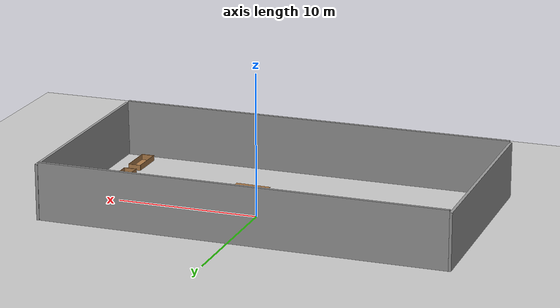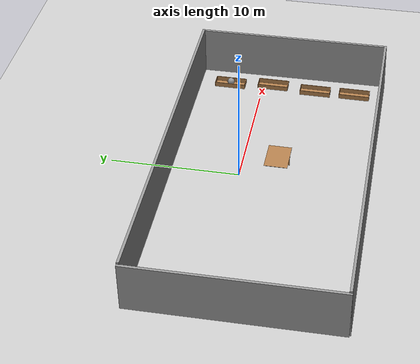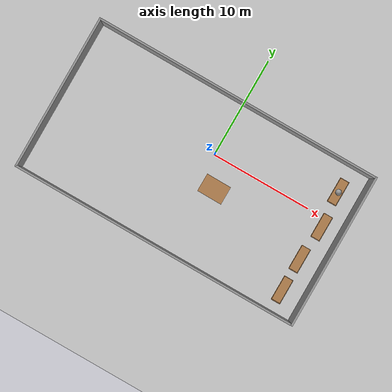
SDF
<sdf version="1.6">
 <world name="default">
  <light name="sun" type="directional">
   <pose>0 0 10 0 -0 0</pose>
   <diffuse>0.8 0.8 0.8 1</diffuse>
   <specular>0.1 0.1 0.1 1</specular>
   <attenuation>
    <range>1000</range>
    <constant>0.9</constant>
    <linear>0.01</linear>
    <quadratic>0.001</quadratic>
   </attenuation>
   <direction>-0.5 0.5 -1</direction>
  </light>
  <model name="ground_plane">
   <static>1</static>
   <link name="link">
    <collision name="collision">
     <geometry><plane><normal>0 0 1</normal><size>100 100</size></plane></geometry>
     <surface><friction><ode><mu>100</mu><mu2>50</mu2></ode></friction></surface>
    </collision>
    <visual name="visual">
     <cast_shadows>0</cast_shadows>
     <geometry><plane><normal>0 0 1</normal><size>100 100</size></plane></geometry>
     <material>
      <script><uri>file://media/materials/scripts/gazebo.material</uri><name>Gazebo/Grey</name></script>
     </material>
    </visual>
   </link>
  </model>
  <gravity>0 0 -9.8</gravity>
  <magnetic_field>6e-06 2.3e-05 -4.2e-05</magnetic_field>
  <atmosphere type="adiabatic"/>
  <physics name="default_physics" default="0" type="ode">
   <max_step_size>0.001</max_step_size>
   <real_time_factor>1</real_time_factor>
   <real_time_update_rate>1000</real_time_update_rate>
  </physics>
  <scene><ambient>0.4 0.4 0.4 1</ambient><background>0.7 0.7 0.7 1</background><shadows>1</shadows></scene>
  <spherical_coordinates>
   <surface_model>EARTH_WGS84</surface_model>
   <latitude_deg>0</latitude_deg>
   <longitude_deg>0</longitude_deg>
   <elevation>0</elevation>
   <heading_deg>0</heading_deg>
  </spherical_coordinates>
  <model name="grey_wall_1">
   <link name="link">
    <pose>0 0 1.4 0 -0 0</pose>
    <inertial>
     <inertia>
      <ixx>1.79769e+308</ixx>
      <ixy>0</ixy>
      <ixz>0</ixz>
      <iyy>1.79769e+308</iyy>
      <iyz>0</iyz>
      <izz>1.79769e+308</izz>
     </inertia>
     <mass>0</mass>
    </inertial>
    <visual name="visual">
     <cast_shadows>0</cast_shadows>
     <geometry><box><size>28.4 0.2 5.2958</size></box></geometry>
     <material>
      <script>
       <uri>model://grey_wall/materials/scripts</uri>
       <uri>model://grey_wall/materials/textures</uri>
       <name>vrc/grey_wall</name>
      </script>
      <ambient>1 1 1 1</ambient>
      <diffuse>1 1 1 1</diffuse>
      <specular>0 0 0 1</specular>
      <emissive>0 0 0 1</emissive>
      <shader type="vertex"><normal_map>__default__</normal_map></shader>
     </material>
    </visual>
    <collision name="collision">
     <geometry><box><size>10.7249 0.2 5.2958</size></box></geometry>
     <surface>
      <friction>
       <ode><mu>1</mu><mu2>1</mu2><fdir1>0 0 0</fdir1><slip1>0</slip1><slip2>0</slip2></ode>
       <torsional>
        <coefficient>1</coefficient>
        <patch_radius>0</patch_radius>
        <surface_radius>0</surface_radius>
        <use_patch_radius>1</use_patch_radius>
        <ode><slip>0</slip></ode>
       </torsional>
      </friction>
      <bounce><restitution_coefficient>0</restitution_coefficient><threshold>1e+06</threshold></bounce>
      <contact>
       <collide_without_contact>0</collide_without_contact>
       <collide_without_contact_bitmask>1</collide_without_contact_bitmask>
       <collide_bitmask>1</collide_bitmask>
       <ode>
        <soft_cfm>0</soft_cfm>
        <soft_erp>0.2</soft_erp>
        <kp>1e+13</kp>
        <kd>1</kd>
        <max_vel>0.01</max_vel>
        <min_depth>0</min_depth>
       </ode>
       <bullet>
        <split_impulse>1</split_impulse>
        <split_impulse_penetration_threshold>-0.01</split_impulse_penetration_threshold>
        <soft_cfm>0</soft_cfm>
        <soft_erp>0.2</soft_erp>
        <kp>1e+13</kp>
        <kd>1</kd>
       </bullet>
      </contact>
     </surface>
    </collision>
   </link>
   <static>1</static>
   <pose>-0.679853 -9.94565 -2e-06 -0.029473 0 0</pose>
  </model>
  <model name="grey_wall_1_clone">
   <link name="link">
    <pose>0 0 1.4 0 -0 0</pose>
    <inertial>
     <inertia>
      <ixx>1.79769e+308</ixx>
      <ixy>0</ixy>
      <ixz>0</ixz>
      <iyy>1.79769e+308</iyy>
      <iyz>0</iyz>
      <izz>1.79769e+308</izz>
     </inertia>
     <mass>0</mass>
    </inertial>
    <visual name="visual">
     <cast_shadows>0</cast_shadows>
     <geometry><box><size>28.4 0.2 5.2958</size></box></geometry>
     <material>
      <script>
       <uri>model://grey_wall/materials/scripts</uri>
       <uri>model://grey_wall/materials/textures</uri>
       <name>vrc/grey_wall</name>
      </script>
      <ambient>1 1 1 1</ambient>
      <diffuse>1 1 1 1</diffuse>
      <specular>0 0 0 1</specular>
      <emissive>0 0 0 1</emissive>
      <shader type="vertex"><normal_map>__default__</normal_map></shader>
     </material>
    </visual>
    <collision name="collision">
     <geometry><box><size>10.7249 0.2 5.2958</size></box></geometry>
     <surface>
      <friction>
       <ode><mu>1</mu><mu2>1</mu2><fdir1>0 0 0</fdir1><slip1>0</slip1><slip2>0</slip2></ode>
       <torsional>
        <coefficient>1</coefficient>
        <patch_radius>0</patch_radius>
        <surface_radius>0</surface_radius>
        <use_patch_radius>1</use_patch_radius>
        <ode><slip>0</slip></ode>
       </torsional>
      </friction>
      <bounce><restitution_coefficient>0</restitution_coefficient><threshold>1e+06</threshold></bounce>
      <contact>
       <collide_without_contact>0</collide_without_contact>
       <collide_without_contact_bitmask>1</collide_without_contact_bitmask>
       <collide_bitmask>1</collide_bitmask>
       <ode>
        <soft_cfm>0</soft_cfm>
        <soft_erp>0.2</soft_erp>
        <kp>1e+13</kp>
        <kd>1</kd>
        <max_vel>0.01</max_vel>
        <min_depth>0</min_depth>
       </ode>
       <bullet>
        <split_impulse>1</split_impulse>
        <split_impulse_penetration_threshold>-0.01</split_impulse_penetration_threshold>
        <soft_cfm>0</soft_cfm>
        <soft_erp>0.2</soft_erp>
        <kp>1e+13</kp>
        <kd>1</kd>
       </bullet>
      </contact>
     </surface>
    </collision>
   </link>
   <static>1</static>
   <pose>-0.696129 5.35932 0 0 -0 0</pose>
  </model>
  <model name="grey_wall_6">
   <link name="link">
    <pose>0 0 1.4 0 -0 0</pose>
    <inertial>
     <mass>1</mass>
     <inertia><ixx>1</ixx><ixy>0</ixy><ixz>0</ixz><iyy>1</iyy><iyz>0</iyz><izz>1</izz></inertia>
    </inertial>
    <visual name="visual">
     <cast_shadows>0</cast_shadows>
     <geometry><box><size>15.4 0.2 5</size></box></geometry>
     <material>
      <script>
       <uri>model://grey_wall/materials/scripts</uri>
       <uri>model://grey_wall/materials/textures</uri>
       <name>vrc/grey_wall</name>
      </script>
      <ambient>1 1 1 1</ambient>
      <diffuse>1 1 1 1</diffuse>
      <specular>0 0 0 1</specular>
      <emissive>0 0 0 1</emissive>
      <shader type="vertex"><normal_map>__default__</normal_map></shader>
     </material>
    </visual>
    <collision name="collision">
     <geometry><box><size>15.4 0.2 5</size></box></geometry>
     <surface>
      <friction>
       <ode><mu>1</mu><mu2>1</mu2><fdir1>0 0 0</fdir1><slip1>0</slip1><slip2>0</slip2></ode>
       <torsional>
        <coefficient>1</coefficient>
        <patch_radius>0</patch_radius>
        <surface_radius>0</surface_radius>
        <use_patch_radius>1</use_patch_radius>
        <ode><slip>0</slip></ode>
       </torsional>
      </friction>
      <bounce><restitution_coefficient>0</restitution_coefficient><threshold>1e+06</threshold></bounce>
      <contact>
       <collide_without_contact>0</collide_without_contact>
       <collide_without_contact_bitmask>1</collide_without_contact_bitmask>
       <collide_bitmask>1</collide_bitmask>
       <ode>
        <soft_cfm>0</soft_cfm>
        <soft_erp>0.2</soft_erp>
        <kp>1e+13</kp>
        <kd>1</kd>
        <max_vel>0.01</max_vel>
        <min_depth>0</min_depth>
       </ode>
       <bullet>
        <split_impulse>1</split_impulse>
        <split_impulse_penetration_threshold>-0.01</split_impulse_penetration_threshold>
        <soft_cfm>0</soft_cfm>
        <soft_erp>0.2</soft_erp>
        <kp>1e+13</kp>
        <kd>1</kd>
       </bullet>
      </contact>
     </surface>
    </collision>
   </link>
   <static>1</static>
   <pose>13.638 -2.2219 0 0 0 -1.56669</pose>
  </model>
  <model name="grey_wall_6_clone">
   <link name="link">
    <pose>0 0 1.4 0 -0 0</pose>
    <inertial>
     <mass>1</mass>
     <inertia><ixx>1</ixx><ixy>0</ixy><ixz>0</ixz><iyy>1</iyy><iyz>0</iyz><izz>1</izz></inertia>
    </inertial>
    <visual name="visual">
     <cast_shadows>0</cast_shadows>
     <geometry><box><size>15.4 0.2 5</size></box></geometry>
     <material>
      <script>
       <uri>model://grey_wall/materials/scripts</uri>
       <uri>model://grey_wall/materials/textures</uri>
       <name>vrc/grey_wall</name>
      </script>
      <ambient>1 1 1 1</ambient>
      <diffuse>1 1 1 1</diffuse>
      <specular>0 0 0 1</specular>
      <emissive>0 0 0 1</emissive>
      <shader type="vertex"><normal_map>__default__</normal_map></shader>
     </material>
    </visual>
    <collision name="collision">
     <geometry><box><size>15.4 0.2 5</size></box></geometry>
     <surface>
      <friction>
       <ode><mu>1</mu><mu2>1</mu2><fdir1>0 0 0</fdir1><slip1>0</slip1><slip2>0</slip2></ode>
       <torsional>
        <coefficient>1</coefficient>
        <patch_radius>0</patch_radius>
        <surface_radius>0</surface_radius>
        <use_patch_radius>1</use_patch_radius>
        <ode><slip>0</slip></ode>
       </torsional>
      </friction>
      <bounce><restitution_coefficient>0</restitution_coefficient><threshold>1e+06</threshold></bounce>
      <contact>
       <collide_without_contact>0</collide_without_contact>
       <collide_without_contact_bitmask>1</collide_without_contact_bitmask>
       <collide_bitmask>1</collide_bitmask>
       <ode>
        <soft_cfm>0</soft_cfm>
        <soft_erp>0.2</soft_erp>
        <kp>1e+13</kp>
        <kd>1</kd>
        <max_vel>0.01</max_vel>
        <min_depth>0</min_depth>
       </ode>
       <bullet>
        <split_impulse>1</split_impulse>
        <split_impulse_penetration_threshold>-0.01</split_impulse_penetration_threshold>
        <soft_cfm>0</soft_cfm>
        <soft_erp>0.2</soft_erp>
        <kp>1e+13</kp>
        <kd>1</kd>
       </bullet>
      </contact>
     </surface>
    </collision>
   </link>
   <static>1</static>
   <pose>-14.9515 -2.24327 0 0 0 -1.56669</pose>
  </model>
  <model name="T_shaped_wood">
   <link name="link">
    <pose>0.009818 0.006108 0.4677 1.37196 -1.56328 -2.95098</pose>
    <inertial>
     <mass>1</mass>
     <inertia><ixx>1</ixx><ixy>0</ixy><ixz>0</ixz><iyy>1</iyy><iyz>0</iyz><izz>1</izz></inertia>
    </inertial>
    <visual name="visual1">
     <pose>0 0.005 0.6 0 -0 0</pose>
     <geometry><box><size>0.9 0.01 1.8</size></box></geometry>
     <material>
      <script><uri>file://media/materials/scripts/gazebo.material</uri><name>Gazebo/Wood</name></script>
      <ambient>1 1 1 1</ambient>
      <diffuse>1 1 1 1</diffuse>
      <specular>0.2 0.2 0.2 1</specular>
      <emissive>0 0 0 1</emissive>
      <shader type="vertex"><normal_map>__default__</normal_map></shader>
     </material>
    </visual>
    <visual name="visual2">
     <pose>0.45 -0.195 0.6 0 -0 0</pose>
     <geometry><box><size>0.02 2.5 1.8</size></box></geometry>
     <material>
      <script><uri>file://media/materials/scripts/gazebo.material</uri><name>Gazebo/Wood</name></script>
      <ambient>1 1 1 1</ambient>
      <diffuse>1 1 1 1</diffuse>
      <specular>0.2 0.2 0.2 1</specular>
      <emissive>0 0 0 1</emissive>
      <shader type="vertex"><normal_map>__default__</normal_map></shader>
     </material>
    </visual>
    <collision name="back">
     <pose>0 0.005 0.6 0 -0 0</pose>
     <geometry><box><size>0.9 0.01 1.2</size></box></geometry>
     <surface>
      <friction>
       <ode><mu>1</mu><mu2>1</mu2><fdir1>0 0 0</fdir1><slip1>0</slip1><slip2>0</slip2></ode>
       <torsional>
        <coefficient>1</coefficient>
        <patch_radius>0</patch_radius>
        <surface_radius>0</surface_radius>
        <use_patch_radius>1</use_patch_radius>
        <ode><slip>0</slip></ode>
       </torsional>
      </friction>
      <bounce><restitution_coefficient>0</restitution_coefficient><threshold>1e+06</threshold></bounce>
      <contact>
       <collide_without_contact>0</collide_without_contact>
       <collide_without_contact_bitmask>1</collide_without_contact_bitmask>
       <collide_bitmask>1</collide_bitmask>
       <ode>
        <soft_cfm>0</soft_cfm>
        <soft_erp>0.2</soft_erp>
        <kp>1e+13</kp>
        <kd>1</kd>
        <max_vel>0.01</max_vel>
        <min_depth>0</min_depth>
       </ode>
       <bullet>
        <split_impulse>1</split_impulse>
        <split_impulse_penetration_threshold>-0.01</split_impulse_penetration_threshold>
        <soft_cfm>0</soft_cfm>
        <soft_erp>0.2</soft_erp>
        <kp>1e+13</kp>
        <kd>1</kd>
       </bullet>
      </contact>
     </surface>
    </collision>
    <collision name="left_side">
     <pose>0.45 -0.195 0.6 0 -0 0</pose>
     <geometry><box><size>0.02 2.5 1.2</size></box></geometry>
     <surface>
      <friction>
       <ode><mu>1</mu><mu2>1</mu2><fdir1>0 0 0</fdir1><slip1>0</slip1><slip2>0</slip2></ode>
       <torsional>
        <coefficient>1</coefficient>
        <patch_radius>0</patch_radius>
        <surface_radius>0</surface_radius>
        <use_patch_radius>1</use_patch_radius>
        <ode><slip>0</slip></ode>
       </torsional>
      </friction>
      <bounce><restitution_coefficient>0</restitution_coefficient><threshold>1e+06</threshold></bounce>
      <contact>
       <collide_without_contact>0</collide_without_contact>
       <collide_without_contact_bitmask>1</collide_without_contact_bitmask>
       <collide_bitmask>1</collide_bitmask>
       <ode>
        <soft_cfm>0</soft_cfm>
        <soft_erp>0.2</soft_erp>
        <kp>1e+13</kp>
        <kd>1</kd>
        <max_vel>0.01</max_vel>
        <min_depth>0</min_depth>
       </ode>
       <bullet>
        <split_impulse>1</split_impulse>
        <split_impulse_penetration_threshold>-0.01</split_impulse_penetration_threshold>
        <soft_cfm>0</soft_cfm>
        <soft_erp>0.2</soft_erp>
        <kp>1e+13</kp>
        <kd>1</kd>
       </bullet>
      </contact>
     </surface>
    </collision>
   </link>
   <static>1</static>
   <pose>1.749 -3.36341 0 0 -0 0</pose>
  </model>
  <model name="open_box">
   <link name="link">
    <pose>0 0 0.638574 0 -0 0</pose>
    <inertial>
     <mass>1</mass>
     <inertia><ixx>1</ixx><ixy>0</ixy><ixz>0</ixz><iyy>1</iyy><iyz>0</iyz><izz>1</izz></inertia>
    </inertial>
    <visual name="visual1">
     <pose>0 0.005 0.6 0 -0 0</pose>
     <geometry><box><size>0.9 0.01 2.5</size></box></geometry>
     <material>
      <script><uri>file://media/materials/scripts/gazebo.material</uri><name>Gazebo/Wood</name></script>
      <ambient>1 1 1 1</ambient>
      <diffuse>1 1 1 1</diffuse>
      <specular>0.2 0.2 0.2 1</specular>
      <emissive>0 0 0 1</emissive>
      <shader type="vertex"><normal_map>__default__</normal_map></shader>
     </material>
    </visual>
    <visual name="visual2">
     <pose>0.45 -0.195 0.6 0 -0 0</pose>
     <geometry><box><size>0.02 0.4 2.5</size></box></geometry>
     <material>
      <script><uri>file://media/materials/scripts/gazebo.material</uri><name>Gazebo/Wood</name></script>
      <ambient>1 1 1 1</ambient>
      <diffuse>1 1 1 1</diffuse>
      <specular>0.2 0.2 0.2 1</specular>
      <emissive>0 0 0 1</emissive>
      <shader type="vertex"><normal_map>__default__</normal_map></shader>
     </material>
    </visual>
    <visual name="visual3">
     <pose>-0.45 -0.195 0.6 0 -0 0</pose>
     <geometry><box><size>0.02 0.4 2.5</size></box></geometry>
     <material>
      <script><uri>file://media/materials/scripts/gazebo.material</uri><name>Gazebo/Wood</name></script>
      <ambient>1 1 1 1</ambient>
      <diffuse>1 1 1 1</diffuse>
      <specular>0.2 0.2 0.2 1</specular>
      <emissive>0 0 0 1</emissive>
      <shader type="vertex"><normal_map>__default__</normal_map></shader>
     </material>
    </visual>
    <visual name="visual4">
     <pose>0 -0.195 -0.62 0 -0 0</pose>
     <geometry><box><size>0.88 0.4 0.06</size></box></geometry>
     <material>
      <script><uri>file://media/materials/scripts/gazebo.material</uri><name>Gazebo/Wood</name></script>
      <ambient>1 1 1 1</ambient>
      <diffuse>1 1 1 1</diffuse>
      <specular>0.2 0.2 0.2 1</specular>
      <emissive>0 0 0 1</emissive>
      <shader type="vertex"><normal_map>__default__</normal_map></shader>
     </material>
    </visual>
    <visual name="visual5">
     <pose>0 -0.195 1.85 0 -0 0</pose>
     <geometry><box><size>0.88 0.4 0.02</size></box></geometry>
     <material>
      <script><uri>file://media/materials/scripts/gazebo.material</uri><name>Gazebo/Wood</name></script>
      <ambient>1 1 1 1</ambient>
      <diffuse>1 1 1 1</diffuse>
      <specular>0.2 0.2 0.2 1</specular>
      <emissive>0 0 0 1</emissive>
      <shader type="vertex"><normal_map>__default__</normal_map></shader>
     </material>
    </visual>
    <collision name="back">
     <pose>0 0.005 0.6 0 -0 0</pose>
     <geometry><box><size>0.9 0.01 2.5</size></box></geometry>
     <surface>
      <friction>
       <ode><mu>1</mu><mu2>1</mu2><fdir1>0 0 0</fdir1><slip1>0</slip1><slip2>0</slip2></ode>
       <torsional>
        <coefficient>1</coefficient>
        <patch_radius>0</patch_radius>
        <surface_radius>0</surface_radius>
        <use_patch_radius>1</use_patch_radius>
        <ode><slip>0</slip></ode>
       </torsional>
      </friction>
      <bounce><restitution_coefficient>0</restitution_coefficient><threshold>1e+06</threshold></bounce>
      <contact>
       <collide_without_contact>0</collide_without_contact>
       <collide_without_contact_bitmask>1</collide_without_contact_bitmask>
       <collide_bitmask>1</collide_bitmask>
       <ode>
        <soft_cfm>0</soft_cfm>
        <soft_erp>0.2</soft_erp>
        <kp>1e+13</kp>
        <kd>1</kd>
        <max_vel>0.01</max_vel>
        <min_depth>0</min_depth>
       </ode>
       <bullet>
        <split_impulse>1</split_impulse>
        <split_impulse_penetration_threshold>-0.01</split_impulse_penetration_threshold>
        <soft_cfm>0</soft_cfm>
        <soft_erp>0.2</soft_erp>
        <kp>1e+13</kp>
        <kd>1</kd>
       </bullet>
      </contact>
     </surface>
    </collision>
    <collision name="left_side">
     <pose>0.45 -0.195 0.6 0 -0 0</pose>
     <geometry><box><size>0.02 0.4 1.2</size></box></geometry>
     <surface>
      <friction>
       <ode><mu>1</mu><mu2>1</mu2><fdir1>0 0 0</fdir1><slip1>0</slip1><slip2>0</slip2></ode>
       <torsional>
        <coefficient>1</coefficient>
        <patch_radius>0</patch_radius>
        <surface_radius>0</surface_radius>
        <use_patch_radius>1</use_patch_radius>
        <ode><slip>0</slip></ode>
       </torsional>
      </friction>
      <bounce><restitution_coefficient>0</restitution_coefficient><threshold>1e+06</threshold></bounce>
      <contact>
       <collide_without_contact>0</collide_without_contact>
       <collide_without_contact_bitmask>1</collide_without_contact_bitmask>
       <collide_bitmask>1</collide_bitmask>
       <ode>
        <soft_cfm>0</soft_cfm>
        <soft_erp>0.2</soft_erp>
        <kp>1e+13</kp>
        <kd>1</kd>
        <max_vel>0.01</max_vel>
        <min_depth>0</min_depth>
       </ode>
       <bullet>
        <split_impulse>1</split_impulse>
        <split_impulse_penetration_threshold>-0.01</split_impulse_penetration_threshold>
        <soft_cfm>0</soft_cfm>
        <soft_erp>0.2</soft_erp>
        <kp>1e+13</kp>
        <kd>1</kd>
       </bullet>
      </contact>
     </surface>
    </collision>
    <collision name="right_side">
     <pose>-0.45 -0.195 0.6 0 -0 0</pose>
     <geometry><box><size>0.02 0.4 1.2</size></box></geometry>
     <surface>
      <friction>
       <ode><mu>1</mu><mu2>1</mu2><fdir1>0 0 0</fdir1><slip1>0</slip1><slip2>0</slip2></ode>
       <torsional>
        <coefficient>1</coefficient>
        <patch_radius>0</patch_radius>
        <surface_radius>0</surface_radius>
        <use_patch_radius>1</use_patch_radius>
        <ode><slip>0</slip></ode>
       </torsional>
      </friction>
      <bounce><restitution_coefficient>0</restitution_coefficient><threshold>1e+06</threshold></bounce>
      <contact>
       <collide_without_contact>0</collide_without_contact>
       <collide_without_contact_bitmask>1</collide_without_contact_bitmask>
       <collide_bitmask>1</collide_bitmask>
       <ode>
        <soft_cfm>0</soft_cfm>
        <soft_erp>0.2</soft_erp>
        <kp>1e+13</kp>
        <kd>1</kd>
        <max_vel>0.01</max_vel>
        <min_depth>0</min_depth>
       </ode>
       <bullet>
        <split_impulse>1</split_impulse>
        <split_impulse_penetration_threshold>-0.01</split_impulse_penetration_threshold>
        <soft_cfm>0</soft_cfm>
        <soft_erp>0.2</soft_erp>
        <kp>1e+13</kp>
        <kd>1</kd>
       </bullet>
      </contact>
     </surface>
    </collision>
    <collision name="bottom">
     <pose>0 -0.195 0.03 0 -0 0</pose>
     <geometry><box><size>0.88 0.4 0.06</size></box></geometry>
     <surface>
      <friction>
       <ode><mu>1</mu><mu2>1</mu2><fdir1>0 0 0</fdir1><slip1>0</slip1><slip2>0</slip2></ode>
       <torsional>
        <coefficient>1</coefficient>
        <patch_radius>0</patch_radius>
        <surface_radius>0</surface_radius>
        <use_patch_radius>1</use_patch_radius>
        <ode><slip>0</slip></ode>
       </torsional>
      </friction>
      <bounce><restitution_coefficient>0</restitution_coefficient><threshold>1e+06</threshold></bounce>
      <contact>
       <collide_without_contact>0</collide_without_contact>
       <collide_without_contact_bitmask>1</collide_without_contact_bitmask>
       <collide_bitmask>1</collide_bitmask>
       <ode>
        <soft_cfm>0</soft_cfm>
        <soft_erp>0.2</soft_erp>
        <kp>1e+13</kp>
        <kd>1</kd>
        <max_vel>0.01</max_vel>
        <min_depth>0</min_depth>
       </ode>
       <bullet>
        <split_impulse>1</split_impulse>
        <split_impulse_penetration_threshold>-0.01</split_impulse_penetration_threshold>
        <soft_cfm>0</soft_cfm>
        <soft_erp>0.2</soft_erp>
        <kp>1e+13</kp>
        <kd>1</kd>
       </bullet>
      </contact>
     </surface>
    </collision>
    <collision name="top">
     <pose>0 -0.195 1.19 0 -0 0</pose>
     <geometry><box><size>0.88 0.4 0.02</size></box></geometry>
     <surface>
      <friction>
       <ode><mu>1</mu><mu2>1</mu2><fdir1>0 0 0</fdir1><slip1>0</slip1><slip2>0</slip2></ode>
       <torsional>
        <coefficient>1</coefficient>
        <patch_radius>0</patch_radius>
        <surface_radius>0</surface_radius>
        <use_patch_radius>1</use_patch_radius>
        <ode><slip>0</slip></ode>
       </torsional>
      </friction>
      <bounce><restitution_coefficient>0</restitution_coefficient><threshold>1e+06</threshold></bounce>
      <contact>
       <collide_without_contact>0</collide_without_contact>
       <collide_without_contact_bitmask>1</collide_without_contact_bitmask>
       <collide_bitmask>1</collide_bitmask>
       <ode>
        <soft_cfm>0</soft_cfm>
        <soft_erp>0.2</soft_erp>
        <kp>1e+13</kp>
        <kd>1</kd>
        <max_vel>0.01</max_vel>
        <min_depth>0</min_depth>
       </ode>
       <bullet>
        <split_impulse>1</split_impulse>
        <split_impulse_penetration_threshold>-0.01</split_impulse_penetration_threshold>
        <soft_cfm>0</soft_cfm>
        <soft_erp>0.2</soft_erp>
        <kp>1e+13</kp>
        <kd>1</kd>
       </bullet>
      </contact>
     </surface>
    </collision>
   </link>
   <static>1</static>
   <pose>11.6351 1.51242 0 -1.5641 0 0</pose>
  </model>
  <model name="open_box_clone">
   <link name="link">
    <pose>0 0 0.638574 0 -0 0</pose>
    <inertial>
     <mass>1</mass>
     <inertia><ixx>1</ixx><ixy>0</ixy><ixz>0</ixz><iyy>1</iyy><iyz>0</iyz><izz>1</izz></inertia>
    </inertial>
    <visual name="visual1">
     <pose>0 0.005 0.6 0 -0 0</pose>
     <geometry><box><size>0.9 0.01 2.5</size></box></geometry>
     <material>
      <script><uri>file://media/materials/scripts/gazebo.material</uri><name>Gazebo/Wood</name></script>
      <ambient>1 1 1 1</ambient>
      <diffuse>1 1 1 1</diffuse>
      <specular>0.2 0.2 0.2 1</specular>
      <emissive>0 0 0 1</emissive>
      <shader type="vertex"><normal_map>__default__</normal_map></shader>
     </material>
    </visual>
    <visual name="visual2">
     <pose>0.45 -0.195 0.6 0 -0 0</pose>
     <geometry><box><size>0.02 0.4 2.5</size></box></geometry>
     <material>
      <script><uri>file://media/materials/scripts/gazebo.material</uri><name>Gazebo/Wood</name></script>
      <ambient>1 1 1 1</ambient>
      <diffuse>1 1 1 1</diffuse>
      <specular>0.2 0.2 0.2 1</specular>
      <emissive>0 0 0 1</emissive>
      <shader type="vertex"><normal_map>__default__</normal_map></shader>
     </material>
    </visual>
    <visual name="visual3">
     <pose>-0.45 -0.195 0.6 0 -0 0</pose>
     <geometry><box><size>0.02 0.4 2.5</size></box></geometry>
     <material>
      <script><uri>file://media/materials/scripts/gazebo.material</uri><name>Gazebo/Wood</name></script>
      <ambient>1 1 1 1</ambient>
      <diffuse>1 1 1 1</diffuse>
      <specular>0.2 0.2 0.2 1</specular>
      <emissive>0 0 0 1</emissive>
      <shader type="vertex"><normal_map>__default__</normal_map></shader>
     </material>
    </visual>
    <visual name="visual4">
     <pose>0 -0.195 -0.62 0 -0 0</pose>
     <geometry><box><size>0.88 0.4 0.06</size></box></geometry>
     <material>
      <script><uri>file://media/materials/scripts/gazebo.material</uri><name>Gazebo/Wood</name></script>
      <ambient>1 1 1 1</ambient>
      <diffuse>1 1 1 1</diffuse>
      <specular>0.2 0.2 0.2 1</specular>
      <emissive>0 0 0 1</emissive>
      <shader type="vertex"><normal_map>__default__</normal_map></shader>
     </material>
    </visual>
    <visual name="visual5">
     <pose>0 -0.195 1.85 0 -0 0</pose>
     <geometry><box><size>0.88 0.4 0.02</size></box></geometry>
     <material>
      <script><uri>file://media/materials/scripts/gazebo.material</uri><name>Gazebo/Wood</name></script>
      <ambient>1 1 1 1</ambient>
      <diffuse>1 1 1 1</diffuse>
      <specular>0.2 0.2 0.2 1</specular>
      <emissive>0 0 0 1</emissive>
      <shader type="vertex"><normal_map>__default__</normal_map></shader>
     </material>
    </visual>
    <collision name="back">
     <pose>0 0.005 0.6 0 -0 0</pose>
     <geometry><box><size>0.9 0.01 2.5</size></box></geometry>
     <surface>
      <friction>
       <ode><mu>1</mu><mu2>1</mu2><fdir1>0 0 0</fdir1><slip1>0</slip1><slip2>0</slip2></ode>
       <torsional>
        <coefficient>1</coefficient>
        <patch_radius>0</patch_radius>
        <surface_radius>0</surface_radius>
        <use_patch_radius>1</use_patch_radius>
        <ode><slip>0</slip></ode>
       </torsional>
      </friction>
      <bounce><restitution_coefficient>0</restitution_coefficient><threshold>1e+06</threshold></bounce>
      <contact>
       <collide_without_contact>0</collide_without_contact>
       <collide_without_contact_bitmask>1</collide_without_contact_bitmask>
       <collide_bitmask>1</collide_bitmask>
       <ode>
        <soft_cfm>0</soft_cfm>
        <soft_erp>0.2</soft_erp>
        <kp>1e+13</kp>
        <kd>1</kd>
        <max_vel>0.01</max_vel>
        <min_depth>0</min_depth>
       </ode>
       <bullet>
        <split_impulse>1</split_impulse>
        <split_impulse_penetration_threshold>-0.01</split_impulse_penetration_threshold>
        <soft_cfm>0</soft_cfm>
        <soft_erp>0.2</soft_erp>
        <kp>1e+13</kp>
        <kd>1</kd>
       </bullet>
      </contact>
     </surface>
    </collision>
    <collision name="left_side">
     <pose>0.45 -0.195 0.6 0 -0 0</pose>
     <geometry><box><size>0.02 0.4 1.2</size></box></geometry>
     <surface>
      <friction>
       <ode><mu>1</mu><mu2>1</mu2><fdir1>0 0 0</fdir1><slip1>0</slip1><slip2>0</slip2></ode>
       <torsional>
        <coefficient>1</coefficient>
        <patch_radius>0</patch_radius>
        <surface_radius>0</surface_radius>
        <use_patch_radius>1</use_patch_radius>
        <ode><slip>0</slip></ode>
       </torsional>
      </friction>
      <bounce><restitution_coefficient>0</restitution_coefficient><threshold>1e+06</threshold></bounce>
      <contact>
       <collide_without_contact>0</collide_without_contact>
       <collide_without_contact_bitmask>1</collide_without_contact_bitmask>
       <collide_bitmask>1</collide_bitmask>
       <ode>
        <soft_cfm>0</soft_cfm>
        <soft_erp>0.2</soft_erp>
        <kp>1e+13</kp>
        <kd>1</kd>
        <max_vel>0.01</max_vel>
        <min_depth>0</min_depth>
       </ode>
       <bullet>
        <split_impulse>1</split_impulse>
        <split_impulse_penetration_threshold>-0.01</split_impulse_penetration_threshold>
        <soft_cfm>0</soft_cfm>
        <soft_erp>0.2</soft_erp>
        <kp>1e+13</kp>
        <kd>1</kd>
       </bullet>
      </contact>
     </surface>
    </collision>
    <collision name="right_side">
     <pose>-0.45 -0.195 0.6 0 -0 0</pose>
     <geometry><box><size>0.02 0.4 1.2</size></box></geometry>
     <surface>
      <friction>
       <ode><mu>1</mu><mu2>1</mu2><fdir1>0 0 0</fdir1><slip1>0</slip1><slip2>0</slip2></ode>
       <torsional>
        <coefficient>1</coefficient>
        <patch_radius>0</patch_radius>
        <surface_radius>0</surface_radius>
        <use_patch_radius>1</use_patch_radius>
        <ode><slip>0</slip></ode>
       </torsional>
      </friction>
      <bounce><restitution_coefficient>0</restitution_coefficient><threshold>1e+06</threshold></bounce>
      <contact>
       <collide_without_contact>0</collide_without_contact>
       <collide_without_contact_bitmask>1</collide_without_contact_bitmask>
       <collide_bitmask>1</collide_bitmask>
       <ode>
        <soft_cfm>0</soft_cfm>
        <soft_erp>0.2</soft_erp>
        <kp>1e+13</kp>
        <kd>1</kd>
        <max_vel>0.01</max_vel>
        <min_depth>0</min_depth>
       </ode>
       <bullet>
        <split_impulse>1</split_impulse>
        <split_impulse_penetration_threshold>-0.01</split_impulse_penetration_threshold>
        <soft_cfm>0</soft_cfm>
        <soft_erp>0.2</soft_erp>
        <kp>1e+13</kp>
        <kd>1</kd>
       </bullet>
      </contact>
     </surface>
    </collision>
    <collision name="bottom">
     <pose>0 -0.195 0.03 0 -0 0</pose>
     <geometry><box><size>0.88 0.4 0.06</size></box></geometry>
     <surface>
      <friction>
       <ode><mu>1</mu><mu2>1</mu2><fdir1>0 0 0</fdir1><slip1>0</slip1><slip2>0</slip2></ode>
       <torsional>
        <coefficient>1</coefficient>
        <patch_radius>0</patch_radius>
        <surface_radius>0</surface_radius>
        <use_patch_radius>1</use_patch_radius>
        <ode><slip>0</slip></ode>
       </torsional>
      </friction>
      <bounce><restitution_coefficient>0</restitution_coefficient><threshold>1e+06</threshold></bounce>
      <contact>
       <collide_without_contact>0</collide_without_contact>
       <collide_without_contact_bitmask>1</collide_without_contact_bitmask>
       <collide_bitmask>1</collide_bitmask>
       <ode>
        <soft_cfm>0</soft_cfm>
        <soft_erp>0.2</soft_erp>
        <kp>1e+13</kp>
        <kd>1</kd>
        <max_vel>0.01</max_vel>
        <min_depth>0</min_depth>
       </ode>
       <bullet>
        <split_impulse>1</split_impulse>
        <split_impulse_penetration_threshold>-0.01</split_impulse_penetration_threshold>
        <soft_cfm>0</soft_cfm>
        <soft_erp>0.2</soft_erp>
        <kp>1e+13</kp>
        <kd>1</kd>
       </bullet>
      </contact>
     </surface>
    </collision>
    <collision name="top">
     <pose>0 -0.195 1.19 0 -0 0</pose>
     <geometry><box><size>0.88 0.4 0.02</size></box></geometry>
     <surface>
      <friction>
       <ode><mu>1</mu><mu2>1</mu2><fdir1>0 0 0</fdir1><slip1>0</slip1><slip2>0</slip2></ode>
       <torsional>
        <coefficient>1</coefficient>
        <patch_radius>0</patch_radius>
        <surface_radius>0</surface_radius>
        <use_patch_radius>1</use_patch_radius>
        <ode><slip>0</slip></ode>
       </torsional>
      </friction>
      <bounce><restitution_coefficient>0</restitution_coefficient><threshold>1e+06</threshold></bounce>
      <contact>
       <collide_without_contact>0</collide_without_contact>
       <collide_without_contact_bitmask>1</collide_without_contact_bitmask>
       <collide_bitmask>1</collide_bitmask>
       <ode>
        <soft_cfm>0</soft_cfm>
        <soft_erp>0.2</soft_erp>
        <kp>1e+13</kp>
        <kd>1</kd>
        <max_vel>0.01</max_vel>
        <min_depth>0</min_depth>
       </ode>
       <bullet>
        <split_impulse>1</split_impulse>
        <split_impulse_penetration_threshold>-0.01</split_impulse_penetration_threshold>
        <soft_cfm>0</soft_cfm>
        <soft_erp>0.2</soft_erp>
        <kp>1e+13</kp>
        <kd>1</kd>
       </bullet>
      </contact>
     </surface>
    </collision>
   </link>
   <static>1</static>
   <pose>11.9437 -2.07074 0.005024 -1.5641 0 0</pose>
  </model>
  <model name="open_box_clone_0">
   <link name="link">
    <pose>0 0 0.638574 0 -0 0</pose>
    <inertial>
     <mass>1</mass>
     <inertia><ixx>1</ixx><ixy>0</ixy><ixz>0</ixz><iyy>1</iyy><iyz>0</iyz><izz>1</izz></inertia>
    </inertial>
    <visual name="visual1">
     <pose>0 0.005 0.6 0 -0 0</pose>
     <geometry><box><size>0.9 0.01 2.5</size></box></geometry>
     <material>
      <script><uri>file://media/materials/scripts/gazebo.material</uri><name>Gazebo/Wood</name></script>
      <ambient>1 1 1 1</ambient>
      <diffuse>1 1 1 1</diffuse>
      <specular>0.2 0.2 0.2 1</specular>
      <emissive>0 0 0 1</emissive>
      <shader type="vertex"><normal_map>__default__</normal_map></shader>
     </material>
    </visual>
    <visual name="visual2">
     <pose>0.45 -0.195 0.6 0 -0 0</pose>
     <geometry><box><size>0.02 0.4 2.5</size></box></geometry>
     <material>
      <script><uri>file://media/materials/scripts/gazebo.material</uri><name>Gazebo/Wood</name></script>
      <ambient>1 1 1 1</ambient>
      <diffuse>1 1 1 1</diffuse>
      <specular>0.2 0.2 0.2 1</specular>
      <emissive>0 0 0 1</emissive>
      <shader type="vertex"><normal_map>__default__</normal_map></shader>
     </material>
    </visual>
    <visual name="visual3">
     <pose>-0.45 -0.195 0.6 0 -0 0</pose>
     <geometry><box><size>0.02 0.4 2.5</size></box></geometry>
     <material>
      <script><uri>file://media/materials/scripts/gazebo.material</uri><name>Gazebo/Wood</name></script>
      <ambient>1 1 1 1</ambient>
      <diffuse>1 1 1 1</diffuse>
      <specular>0.2 0.2 0.2 1</specular>
      <emissive>0 0 0 1</emissive>
      <shader type="vertex"><normal_map>__default__</normal_map></shader>
     </material>
    </visual>
    <visual name="visual4">
     <pose>0 -0.195 -0.62 0 -0 0</pose>
     <geometry><box><size>0.88 0.4 0.06</size></box></geometry>
     <material>
      <script><uri>file://media/materials/scripts/gazebo.material</uri><name>Gazebo/Wood</name></script>
      <ambient>1 1 1 1</ambient>
      <diffuse>1 1 1 1</diffuse>
      <specular>0.2 0.2 0.2 1</specular>
      <emissive>0 0 0 1</emissive>
      <shader type="vertex"><normal_map>__default__</normal_map></shader>
     </material>
    </visual>
    <visual name="visual5">
     <pose>0 -0.195 1.85 0 -0 0</pose>
     <geometry><box><size>0.88 0.4 0.02</size></box></geometry>
     <material>
      <script><uri>file://media/materials/scripts/gazebo.material</uri><name>Gazebo/Wood</name></script>
      <ambient>1 1 1 1</ambient>
      <diffuse>1 1 1 1</diffuse>
      <specular>0.2 0.2 0.2 1</specular>
      <emissive>0 0 0 1</emissive>
      <shader type="vertex"><normal_map>__default__</normal_map></shader>
     </material>
    </visual>
    <collision name="back">
     <pose>0 0.005 0.6 0 -0 0</pose>
     <geometry><box><size>0.9 0.01 2.5</size></box></geometry>
     <surface>
      <friction>
       <ode><mu>1</mu><mu2>1</mu2><fdir1>0 0 0</fdir1><slip1>0</slip1><slip2>0</slip2></ode>
       <torsional>
        <coefficient>1</coefficient>
        <patch_radius>0</patch_radius>
        <surface_radius>0</surface_radius>
        <use_patch_radius>1</use_patch_radius>
        <ode><slip>0</slip></ode>
       </torsional>
      </friction>
      <bounce><restitution_coefficient>0</restitution_coefficient><threshold>1e+06</threshold></bounce>
      <contact>
       <collide_without_contact>0</collide_without_contact>
       <collide_without_contact_bitmask>1</collide_without_contact_bitmask>
       <collide_bitmask>1</collide_bitmask>
       <ode>
        <soft_cfm>0</soft_cfm>
        <soft_erp>0.2</soft_erp>
        <kp>1e+13</kp>
        <kd>1</kd>
        <max_vel>0.01</max_vel>
        <min_depth>0</min_depth>
       </ode>
       <bullet>
        <split_impulse>1</split_impulse>
        <split_impulse_penetration_threshold>-0.01</split_impulse_penetration_threshold>
        <soft_cfm>0</soft_cfm>
        <soft_erp>0.2</soft_erp>
        <kp>1e+13</kp>
        <kd>1</kd>
       </bullet>
      </contact>
     </surface>
    </collision>
    <collision name="left_side">
     <pose>0.45 -0.195 0.6 0 -0 0</pose>
     <geometry><box><size>0.02 0.4 1.2</size></box></geometry>
     <surface>
      <friction>
       <ode><mu>1</mu><mu2>1</mu2><fdir1>0 0 0</fdir1><slip1>0</slip1><slip2>0</slip2></ode>
       <torsional>
        <coefficient>1</coefficient>
        <patch_radius>0</patch_radius>
        <surface_radius>0</surface_radius>
        <use_patch_radius>1</use_patch_radius>
        <ode><slip>0</slip></ode>
       </torsional>
      </friction>
      <bounce><restitution_coefficient>0</restitution_coefficient><threshold>1e+06</threshold></bounce>
      <contact>
       <collide_without_contact>0</collide_without_contact>
       <collide_without_contact_bitmask>1</collide_without_contact_bitmask>
       <collide_bitmask>1</collide_bitmask>
       <ode>
        <soft_cfm>0</soft_cfm>
        <soft_erp>0.2</soft_erp>
        <kp>1e+13</kp>
        <kd>1</kd>
        <max_vel>0.01</max_vel>
        <min_depth>0</min_depth>
       </ode>
       <bullet>
        <split_impulse>1</split_impulse>
        <split_impulse_penetration_threshold>-0.01</split_impulse_penetration_threshold>
        <soft_cfm>0</soft_cfm>
        <soft_erp>0.2</soft_erp>
        <kp>1e+13</kp>
        <kd>1</kd>
       </bullet>
      </contact>
     </surface>
    </collision>
    <collision name="right_side">
     <pose>-0.45 -0.195 0.6 0 -0 0</pose>
     <geometry><box><size>0.02 0.4 1.2</size></box></geometry>
     <surface>
      <friction>
       <ode><mu>1</mu><mu2>1</mu2><fdir1>0 0 0</fdir1><slip1>0</slip1><slip2>0</slip2></ode>
       <torsional>
        <coefficient>1</coefficient>
        <patch_radius>0</patch_radius>
        <surface_radius>0</surface_radius>
        <use_patch_radius>1</use_patch_radius>
        <ode><slip>0</slip></ode>
       </torsional>
      </friction>
      <bounce><restitution_coefficient>0</restitution_coefficient><threshold>1e+06</threshold></bounce>
      <contact>
       <collide_without_contact>0</collide_without_contact>
       <collide_without_contact_bitmask>1</collide_without_contact_bitmask>
       <collide_bitmask>1</collide_bitmask>
       <ode>
        <soft_cfm>0</soft_cfm>
        <soft_erp>0.2</soft_erp>
        <kp>1e+13</kp>
        <kd>1</kd>
        <max_vel>0.01</max_vel>
        <min_depth>0</min_depth>
       </ode>
       <bullet>
        <split_impulse>1</split_impulse>
        <split_impulse_penetration_threshold>-0.01</split_impulse_penetration_threshold>
        <soft_cfm>0</soft_cfm>
        <soft_erp>0.2</soft_erp>
        <kp>1e+13</kp>
        <kd>1</kd>
       </bullet>
      </contact>
     </surface>
    </collision>
    <collision name="bottom">
     <pose>0 -0.195 0.03 0 -0 0</pose>
     <geometry><box><size>0.88 0.4 0.06</size></box></geometry>
     <surface>
      <friction>
       <ode><mu>1</mu><mu2>1</mu2><fdir1>0 0 0</fdir1><slip1>0</slip1><slip2>0</slip2></ode>
       <torsional>
        <coefficient>1</coefficient>
        <patch_radius>0</patch_radius>
        <surface_radius>0</surface_radius>
        <use_patch_radius>1</use_patch_radius>
        <ode><slip>0</slip></ode>
       </torsional>
      </friction>
      <bounce><restitution_coefficient>0</restitution_coefficient><threshold>1e+06</threshold></bounce>
      <contact>
       <collide_without_contact>0</collide_without_contact>
       <collide_without_contact_bitmask>1</collide_without_contact_bitmask>
       <collide_bitmask>1</collide_bitmask>
       <ode>
        <soft_cfm>0</soft_cfm>
        <soft_erp>0.2</soft_erp>
        <kp>1e+13</kp>
        <kd>1</kd>
        <max_vel>0.01</max_vel>
        <min_depth>0</min_depth>
       </ode>
       <bullet>
        <split_impulse>1</split_impulse>
        <split_impulse_penetration_threshold>-0.01</split_impulse_penetration_threshold>
        <soft_cfm>0</soft_cfm>
        <soft_erp>0.2</soft_erp>
        <kp>1e+13</kp>
        <kd>1</kd>
       </bullet>
      </contact>
     </surface>
    </collision>
    <collision name="top">
     <pose>0 -0.195 1.19 0 -0 0</pose>
     <geometry><box><size>0.88 0.4 0.02</size></box></geometry>
     <surface>
      <friction>
       <ode><mu>1</mu><mu2>1</mu2><fdir1>0 0 0</fdir1><slip1>0</slip1><slip2>0</slip2></ode>
       <torsional>
        <coefficient>1</coefficient>
        <patch_radius>0</patch_radius>
        <surface_radius>0</surface_radius>
        <use_patch_radius>1</use_patch_radius>
        <ode><slip>0</slip></ode>
       </torsional>
      </friction>
      <bounce><restitution_coefficient>0</restitution_coefficient><threshold>1e+06</threshold></bounce>
      <contact>
       <collide_without_contact>0</collide_without_contact>
       <collide_without_contact_bitmask>1</collide_without_contact_bitmask>
       <collide_bitmask>1</collide_bitmask>
       <ode>
        <soft_cfm>0</soft_cfm>
        <soft_erp>0.2</soft_erp>
        <kp>1e+13</kp>
        <kd>1</kd>
        <max_vel>0.01</max_vel>
        <min_depth>0</min_depth>
       </ode>
       <bullet>
        <split_impulse>1</split_impulse>
        <split_impulse_penetration_threshold>-0.01</split_impulse_penetration_threshold>
        <soft_cfm>0</soft_cfm>
        <soft_erp>0.2</soft_erp>
        <kp>1e+13</kp>
        <kd>1</kd>
       </bullet>
      </contact>
     </surface>
    </collision>
   </link>
   <static>1</static>
   <pose>11.6573 -5.6532 0 -1.5641 0 0</pose>
  </model>
  <model name="open_box_clone_1">
   <link name="link">
    <pose>0 0 0.638574 0 -0 0</pose>
    <inertial>
     <mass>1</mass>
     <inertia><ixx>1</ixx><ixy>0</ixy><ixz>0</ixz><iyy>1</iyy><iyz>0</iyz><izz>1</izz></inertia>
    </inertial>
    <visual name="visual1">
     <pose>0 0.005 0.6 0 -0 0</pose>
     <geometry><box><size>0.9 0.01 2.5</size></box></geometry>
     <material>
      <script><uri>file://media/materials/scripts/gazebo.material</uri><name>Gazebo/Wood</name></script>
      <ambient>1 1 1 1</ambient>
      <diffuse>1 1 1 1</diffuse>
      <specular>0.2 0.2 0.2 1</specular>
      <emissive>0 0 0 1</emissive>
      <shader type="vertex"><normal_map>__default__</normal_map></shader>
     </material>
    </visual>
    <visual name="visual2">
     <pose>0.45 -0.195 0.6 0 -0 0</pose>
     <geometry><box><size>0.02 0.4 2.5</size></box></geometry>
     <material>
      <script><uri>file://media/materials/scripts/gazebo.material</uri><name>Gazebo/Wood</name></script>
      <ambient>1 1 1 1</ambient>
      <diffuse>1 1 1 1</diffuse>
      <specular>0.2 0.2 0.2 1</specular>
      <emissive>0 0 0 1</emissive>
      <shader type="vertex"><normal_map>__default__</normal_map></shader>
     </material>
    </visual>
    <visual name="visual3">
     <pose>-0.45 -0.195 0.6 0 -0 0</pose>
     <geometry><box><size>0.02 0.4 2.5</size></box></geometry>
     <material>
      <script><uri>file://media/materials/scripts/gazebo.material</uri><name>Gazebo/Wood</name></script>
      <ambient>1 1 1 1</ambient>
      <diffuse>1 1 1 1</diffuse>
      <specular>0.2 0.2 0.2 1</specular>
      <emissive>0 0 0 1</emissive>
      <shader type="vertex"><normal_map>__default__</normal_map></shader>
     </material>
    </visual>
    <visual name="visual4">
     <pose>0 -0.195 -0.62 0 -0 0</pose>
     <geometry><box><size>0.88 0.4 0.06</size></box></geometry>
     <material>
      <script><uri>file://media/materials/scripts/gazebo.material</uri><name>Gazebo/Wood</name></script>
      <ambient>1 1 1 1</ambient>
      <diffuse>1 1 1 1</diffuse>
      <specular>0.2 0.2 0.2 1</specular>
      <emissive>0 0 0 1</emissive>
      <shader type="vertex"><normal_map>__default__</normal_map></shader>
     </material>
    </visual>
    <visual name="visual5">
     <pose>0 -0.195 1.85 0 -0 0</pose>
     <geometry><box><size>0.88 0.4 0.02</size></box></geometry>
     <material>
      <script><uri>file://media/materials/scripts/gazebo.material</uri><name>Gazebo/Wood</name></script>
      <ambient>1 1 1 1</ambient>
      <diffuse>1 1 1 1</diffuse>
      <specular>0.2 0.2 0.2 1</specular>
      <emissive>0 0 0 1</emissive>
      <shader type="vertex"><normal_map>__default__</normal_map></shader>
     </material>
    </visual>
    <collision name="back">
     <pose>0 0.005 0.6 0 -0 0</pose>
     <geometry><box><size>0.9 0.01 2.5</size></box></geometry>
     <surface>
      <friction>
       <ode><mu>1</mu><mu2>1</mu2><fdir1>0 0 0</fdir1><slip1>0</slip1><slip2>0</slip2></ode>
       <torsional>
        <coefficient>1</coefficient>
        <patch_radius>0</patch_radius>
        <surface_radius>0</surface_radius>
        <use_patch_radius>1</use_patch_radius>
        <ode><slip>0</slip></ode>
       </torsional>
      </friction>
      <bounce><restitution_coefficient>0</restitution_coefficient><threshold>1e+06</threshold></bounce>
      <contact>
       <collide_without_contact>0</collide_without_contact>
       <collide_without_contact_bitmask>1</collide_without_contact_bitmask>
       <collide_bitmask>1</collide_bitmask>
       <ode>
        <soft_cfm>0</soft_cfm>
        <soft_erp>0.2</soft_erp>
        <kp>1e+13</kp>
        <kd>1</kd>
        <max_vel>0.01</max_vel>
        <min_depth>0</min_depth>
       </ode>
       <bullet>
        <split_impulse>1</split_impulse>
        <split_impulse_penetration_threshold>-0.01</split_impulse_penetration_threshold>
        <soft_cfm>0</soft_cfm>
        <soft_erp>0.2</soft_erp>
        <kp>1e+13</kp>
        <kd>1</kd>
       </bullet>
      </contact>
     </surface>
    </collision>
    <collision name="left_side">
     <pose>0.45 -0.195 0.6 0 -0 0</pose>
     <geometry><box><size>0.02 0.4 1.2</size></box></geometry>
     <surface>
      <friction>
       <ode><mu>1</mu><mu2>1</mu2><fdir1>0 0 0</fdir1><slip1>0</slip1><slip2>0</slip2></ode>
       <torsional>
        <coefficient>1</coefficient>
        <patch_radius>0</patch_radius>
        <surface_radius>0</surface_radius>
        <use_patch_radius>1</use_patch_radius>
        <ode><slip>0</slip></ode>
       </torsional>
      </friction>
      <bounce><restitution_coefficient>0</restitution_coefficient><threshold>1e+06</threshold></bounce>
      <contact>
       <collide_without_contact>0</collide_without_contact>
       <collide_without_contact_bitmask>1</collide_without_contact_bitmask>
       <collide_bitmask>1</collide_bitmask>
       <ode>
        <soft_cfm>0</soft_cfm>
        <soft_erp>0.2</soft_erp>
        <kp>1e+13</kp>
        <kd>1</kd>
        <max_vel>0.01</max_vel>
        <min_depth>0</min_depth>
       </ode>
       <bullet>
        <split_impulse>1</split_impulse>
        <split_impulse_penetration_threshold>-0.01</split_impulse_penetration_threshold>
        <soft_cfm>0</soft_cfm>
        <soft_erp>0.2</soft_erp>
        <kp>1e+13</kp>
        <kd>1</kd>
       </bullet>
      </contact>
     </surface>
    </collision>
    <collision name="right_side">
     <pose>-0.45 -0.195 0.6 0 -0 0</pose>
     <geometry><box><size>0.02 0.4 1.2</size></box></geometry>
     <surface>
      <friction>
       <ode><mu>1</mu><mu2>1</mu2><fdir1>0 0 0</fdir1><slip1>0</slip1><slip2>0</slip2></ode>
       <torsional>
        <coefficient>1</coefficient>
        <patch_radius>0</patch_radius>
        <surface_radius>0</surface_radius>
        <use_patch_radius>1</use_patch_radius>
        <ode><slip>0</slip></ode>
       </torsional>
      </friction>
      <bounce><restitution_coefficient>0</restitution_coefficient><threshold>1e+06</threshold></bounce>
      <contact>
       <collide_without_contact>0</collide_without_contact>
       <collide_without_contact_bitmask>1</collide_without_contact_bitmask>
       <collide_bitmask>1</collide_bitmask>
       <ode>
        <soft_cfm>0</soft_cfm>
        <soft_erp>0.2</soft_erp>
        <kp>1e+13</kp>
        <kd>1</kd>
        <max_vel>0.01</max_vel>
        <min_depth>0</min_depth>
       </ode>
       <bullet>
        <split_impulse>1</split_impulse>
        <split_impulse_penetration_threshold>-0.01</split_impulse_penetration_threshold>
        <soft_cfm>0</soft_cfm>
        <soft_erp>0.2</soft_erp>
        <kp>1e+13</kp>
        <kd>1</kd>
       </bullet>
      </contact>
     </surface>
    </collision>
    <collision name="bottom">
     <pose>0 -0.195 0.03 0 -0 0</pose>
     <geometry><box><size>0.88 0.4 0.06</size></box></geometry>
     <surface>
      <friction>
       <ode><mu>1</mu><mu2>1</mu2><fdir1>0 0 0</fdir1><slip1>0</slip1><slip2>0</slip2></ode>
       <torsional>
        <coefficient>1</coefficient>
        <patch_radius>0</patch_radius>
        <surface_radius>0</surface_radius>
        <use_patch_radius>1</use_patch_radius>
        <ode><slip>0</slip></ode>
       </torsional>
      </friction>
      <bounce><restitution_coefficient>0</restitution_coefficient><threshold>1e+06</threshold></bounce>
      <contact>
       <collide_without_contact>0</collide_without_contact>
       <collide_without_contact_bitmask>1</collide_without_contact_bitmask>
       <collide_bitmask>1</collide_bitmask>
       <ode>
        <soft_cfm>0</soft_cfm>
        <soft_erp>0.2</soft_erp>
        <kp>1e+13</kp>
        <kd>1</kd>
        <max_vel>0.01</max_vel>
        <min_depth>0</min_depth>
       </ode>
       <bullet>
        <split_impulse>1</split_impulse>
        <split_impulse_penetration_threshold>-0.01</split_impulse_penetration_threshold>
        <soft_cfm>0</soft_cfm>
        <soft_erp>0.2</soft_erp>
        <kp>1e+13</kp>
        <kd>1</kd>
       </bullet>
      </contact>
     </surface>
    </collision>
    <collision name="top">
     <pose>0 -0.195 1.19 0 -0 0</pose>
     <geometry><box><size>0.88 0.4 0.02</size></box></geometry>
     <surface>
      <friction>
       <ode><mu>1</mu><mu2>1</mu2><fdir1>0 0 0</fdir1><slip1>0</slip1><slip2>0</slip2></ode>
       <torsional>
        <coefficient>1</coefficient>
        <patch_radius>0</patch_radius>
        <surface_radius>0</surface_radius>
        <use_patch_radius>1</use_patch_radius>
        <ode><slip>0</slip></ode>
       </torsional>
      </friction>
      <bounce><restitution_coefficient>0</restitution_coefficient><threshold>1e+06</threshold></bounce>
      <contact>
       <collide_without_contact>0</collide_without_contact>
       <collide_without_contact_bitmask>1</collide_without_contact_bitmask>
       <collide_bitmask>1</collide_bitmask>
       <ode>
        <soft_cfm>0</soft_cfm>
        <soft_erp>0.2</soft_erp>
        <kp>1e+13</kp>
        <kd>1</kd>
        <max_vel>0.01</max_vel>
        <min_depth>0</min_depth>
       </ode>
       <bullet>
        <split_impulse>1</split_impulse>
        <split_impulse_penetration_threshold>-0.01</split_impulse_penetration_threshold>
        <soft_cfm>0</soft_cfm>
        <soft_erp>0.2</soft_erp>
        <kp>1e+13</kp>
        <kd>1</kd>
       </bullet>
      </contact>
     </surface>
    </collision>
   </link>
   <static>1</static>
   <pose>11.6801 -8.91958 0 -1.5641 0 0</pose>
  </model>
  <model name="unit_sphere_0_0">
   <pose>11.6809 2.72974 0.298736 0 -0 0</pose>
   <link name="link">
    <inertial>
     <mass>1</mass>
     <inertia><ixx>0.1</ixx><ixy>0</ixy><ixz>0</ixz><iyy>0.1</iyy><iyz>0</iyz><izz>0.1</izz></inertia>
    </inertial>
    <collision name="collision"><geometry><sphere><radius>0.29943</radius></sphere></geometry></collision>
    <visual name="visual">
     <geometry><sphere><radius>0.29943</radius></sphere></geometry>
     <material>
      <script><name>Gazebo/Grey</name><uri>file://media/materials/scripts/gazebo.material</uri></script>
     </material>
    </visual>
   </link>
  </model>
 </world>
</sdf>
